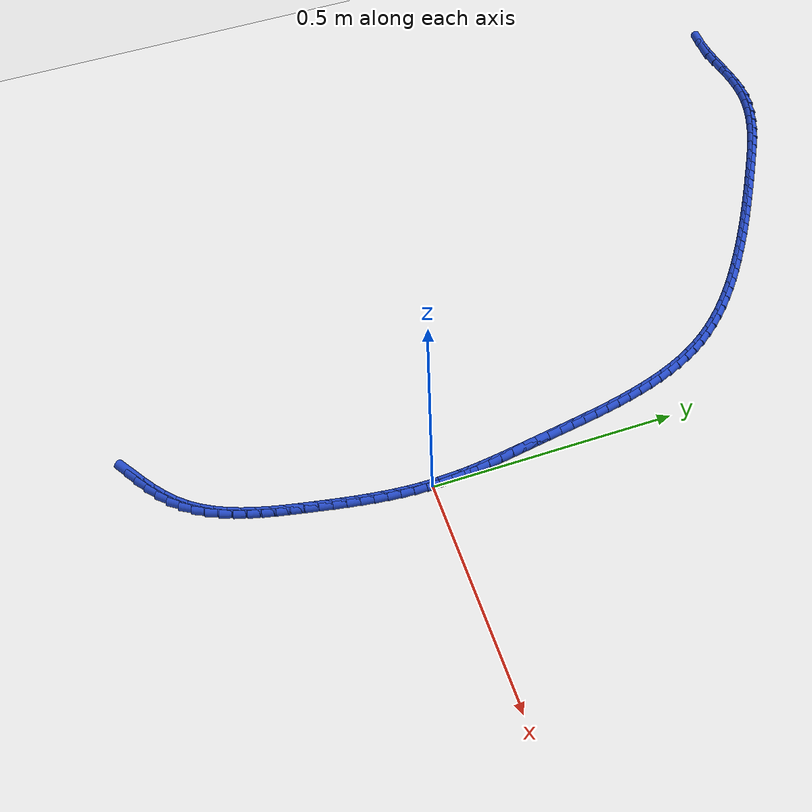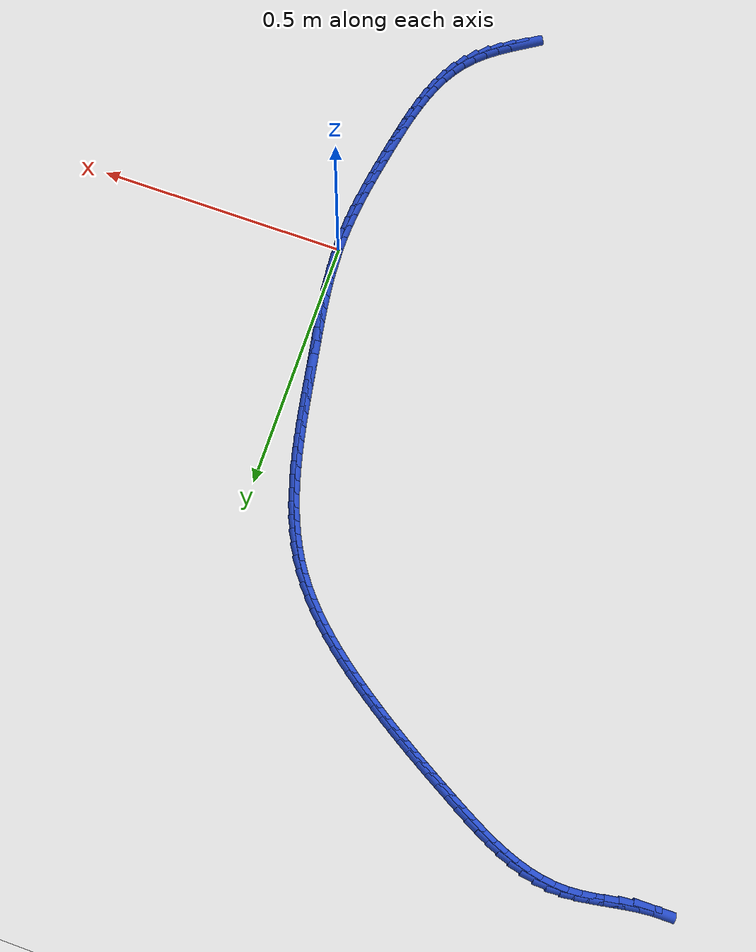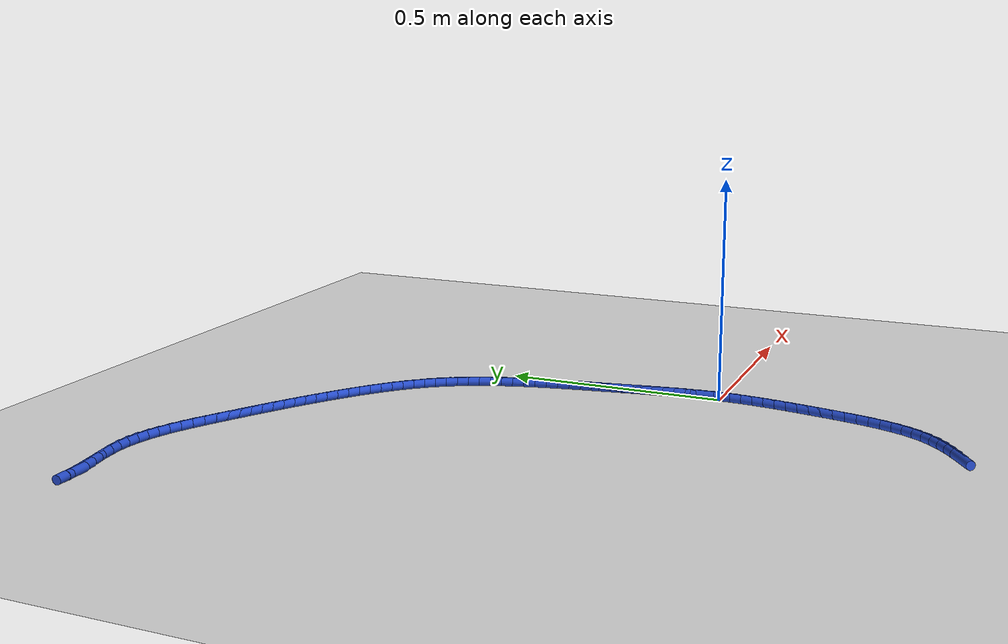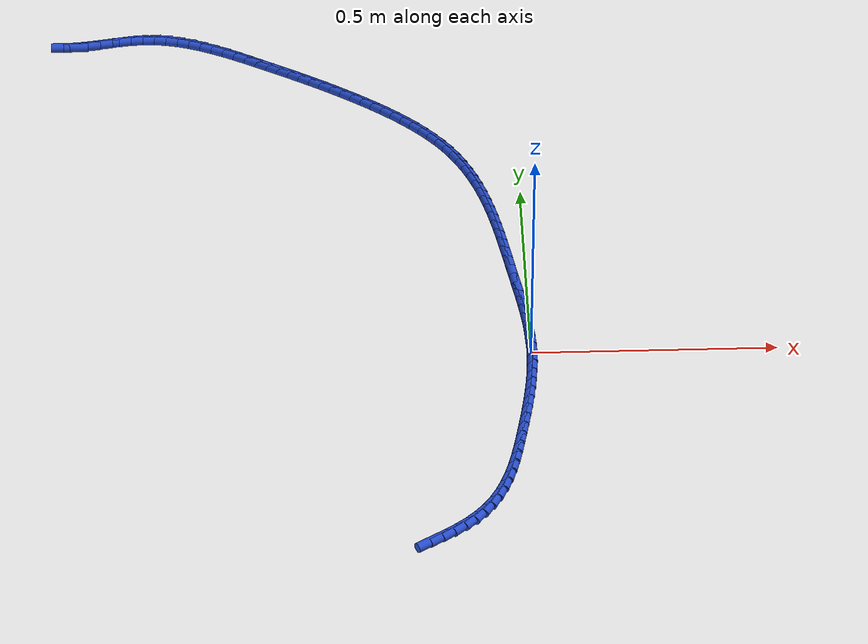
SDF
<sdf version="1.6">
 <world name="default">
  <model name="ground_plane">
   <static>1</static>
   <link name="link">
    <collision name="collision">
     <geometry><plane><normal>0 0 1</normal><size>100 100</size></plane></geometry>
     <surface><friction><ode><mu>100</mu><mu2>50</mu2></ode></friction></surface>
    </collision>
    <visual name="visual">
     <cast_shadows>0</cast_shadows>
     <geometry><plane><normal>0 0 1</normal><size>100 100</size></plane></geometry>
     <material>
      <script><uri>file://media/materials/scripts/gazebo.material</uri><name>Gazebo/WhiteGlow</name></script>
     </material>
    </visual>
   </link>
  </model>
  <model name="line">
   <link name="link_0">
    <pose>2.6020852139652106e-18 2.7755575615628914e-17 0.01 0 1.57 -1.5447094421264198</pose>
    <collision name="collision">
     <geometry><cylinder><radius>0.01</radius><length>0.08</length></cylinder></geometry>
    </collision>
    <visual name="visual">
     <material>
      <script><name>Gazebo/Blue</name><uri>file://media/materials/scripts/gazebo.material</uri></script>
     </material>
     <geometry><cylinder><radius>0.01</radius><length>0.08</length></cylinder></geometry>
    </visual>
   </link>
   <link name="link_1">
    <pose>-0.0006769524643260038 0.025944029147597688 0.01 0 1.57 -1.5100900439261125</pose>
    <collision name="collision">
     <geometry><cylinder><radius>0.01</radius><length>0.08</length></cylinder></geometry>
    </collision>
    <visual name="visual">
     <material>
      <script><name>Gazebo/Blue</name><uri>file://media/materials/scripts/gazebo.material</uri></script>
     </material>
     <geometry><cylinder><radius>0.01</radius><length>0.08</length></cylinder></geometry>
    </visual>
   </link>
   <link name="link_2">
    <pose>-0.002255354939390575 0.05191272607095028 0.01 0 1.57 -1.4803244715710675</pose>
    <collision name="collision">
     <geometry><cylinder><radius>0.01</radius><length>0.08</length></cylinder></geometry>
    </collision>
    <visual name="visual">
     <material>
      <script><name>Gazebo/Blue</name><uri>file://media/materials/scripts/gazebo.material</uri></script>
     </material>
     <geometry><cylinder><radius>0.01</radius><length>0.08</length></cylinder></geometry>
    </visual>
   </link>
   <link name="link_3">
    <pose>-0.004614749920993577 0.07792030733704819 0.01 0 1.57 -1.4554301864849306</pose>
    <collision name="collision">
     <geometry><cylinder><radius>0.01</radius><length>0.08</length></cylinder></geometry>
    </collision>
    <visual name="visual">
     <material>
      <script><name>Gazebo/Blue</name><uri>file://media/materials/scripts/gazebo.material</uri></script>
     </material>
     <geometry><cylinder><radius>0.01</radius><length>0.08</length></cylinder></geometry>
    </visual>
   </link>
   <link name="link_4">
    <pose>-0.007634679904934878 0.10398098951288173 0.01 0 1.57 -1.435377638917283</pose>
    <collision name="collision">
     <geometry><cylinder><radius>0.01</radius><length>0.08</length></cylinder></geometry>
    </collision>
    <visual name="visual">
     <material>
      <script><name>Gazebo/Blue</name><uri>file://media/materials/scripts/gazebo.material</uri></script>
     </material>
     <geometry><cylinder><radius>0.01</radius><length>0.08</length></cylinder></geometry>
    </visual>
   </link>
   <link name="link_5">
    <pose>-0.011194687387014351 0.1301089891654413 0.01 0 1.57 -1.420108404458254</pose>
    <collision name="collision">
     <geometry><cylinder><radius>0.01</radius><length>0.08</length></cylinder></geometry>
    </collision>
    <visual name="visual">
     <material>
      <script><name>Gazebo/Blue</name><uri>file://media/materials/scripts/gazebo.material</uri></script>
     </material>
     <geometry><cylinder><radius>0.01</radius><length>0.08</length></cylinder></geometry>
    </visual>
   </link>
   <link name="link_6">
    <pose>-0.015174314863031862 0.15631852286171719 0.01 0 1.57 -1.409549563930252</pose>
    <collision name="collision">
     <geometry><cylinder><radius>0.01</radius><length>0.08</length></cylinder></geometry>
    </collision>
    <visual name="visual">
     <material>
      <script><name>Gazebo/Blue</name><uri>file://media/materials/scripts/gazebo.material</uri></script>
     </material>
     <geometry><cylinder><radius>0.01</radius><length>0.08</length></cylinder></geometry>
    </visual>
   </link>
   <link name="link_7">
    <pose>-0.019453104828787288 0.18262380716869986 0.01 0 1.57 -1.4036242079029975</pose>
    <collision name="collision">
     <geometry><cylinder><radius>0.01</radius><length>0.08</length></cylinder></geometry>
    </collision>
    <visual name="visual">
     <material>
      <script><name>Gazebo/Blue</name><uri>file://media/materials/scripts/gazebo.material</uri></script>
     </material>
     <geometry><cylinder><radius>0.01</radius><length>0.08</length></cylinder></geometry>
    </visual>
   </link>
   <link name="link_8">
    <pose>-0.023910599780080498 0.2090390586533796 0.01 0 1.57 -1.4022582798342151</pose>
    <collision name="collision">
     <geometry><cylinder><radius>0.01</radius><length>0.08</length></cylinder></geometry>
    </collision>
    <visual name="visual">
     <material>
      <script><name>Gazebo/Blue</name><uri>file://media/materials/scripts/gazebo.material</uri></script>
     </material>
     <geometry><cylinder><radius>0.01</radius><length>0.08</length></cylinder></geometry>
    </visual>
   </link>
   <link name="link_9">
    <pose>-0.028426342212711356 0.23557849388274674 0.01 0 1.57 -1.404509090377896</pose>
    <collision name="collision">
     <geometry><cylinder><radius>0.01</radius><length>0.08</length></cylinder></geometry>
    </collision>
    <visual name="visual">
     <material>
      <script><name>Gazebo/Blue</name><uri>file://media/materials/scripts/gazebo.material</uri></script>
     </material>
     <geometry><cylinder><radius>0.01</radius><length>0.08</length></cylinder></geometry>
    </visual>
   </link>
   <link name="link_10">
    <pose>-0.032902531148956984 0.2622483398547428 0.01 0 1.57 -1.4049930176146386</pose>
    <collision name="collision">
     <geometry><cylinder><radius>0.01</radius><length>0.08</length></cylinder></geometry>
    </collision>
    <visual name="visual">
     <material>
      <script><name>Gazebo/Blue</name><uri>file://media/materials/scripts/gazebo.material</uri></script>
     </material>
     <geometry><cylinder><radius>0.01</radius><length>0.08</length></cylinder></geometry>
    </visual>
   </link>
   <link name="link_11">
    <pose>-0.0373801278206156 0.2890058906359765 0.01 0 1.57 -1.4017098681388058</pose>
    <collision name="collision">
     <geometry><cylinder><radius>0.01</radius><length>0.08</length></cylinder></geometry>
    </collision>
    <visual name="visual">
     <material>
      <script><name>Gazebo/Blue</name><uri>file://media/materials/scripts/gazebo.material</uri></script>
     </material>
     <geometry><cylinder><radius>0.01</radius><length>0.08</length></cylinder></geometry>
    </visual>
   </link>
   <link name="link_12">
    <pose>-0.04195260432512614 0.31578992292733105 0.01 0 1.57 -1.3946572514319164</pose>
    <collision name="collision">
     <geometry><cylinder><radius>0.01</radius><length>0.08</length></cylinder></geometry>
    </collision>
    <visual name="visual">
     <material>
      <script><name>Gazebo/Blue</name><uri>file://media/materials/scripts/gazebo.material</uri></script>
     </material>
     <geometry><cylinder><radius>0.01</radius><length>0.08</length></cylinder></geometry>
    </visual>
   </link>
   <link name="link_13">
    <pose>-0.04671353150580254 0.3425391786080681 0.01 0 1.57 -1.383800849583464</pose>
    <collision name="collision">
     <geometry><cylinder><radius>0.01</radius><length>0.08</length></cylinder></geometry>
    </collision>
    <visual name="visual">
     <material>
      <script><name>Gazebo/Blue</name><uri>file://media/materials/scripts/gazebo.material</uri></script>
     </material>
     <geometry><cylinder><radius>0.01</radius><length>0.08</length></cylinder></geometry>
    </visual>
   </link>
   <link name="link_14">
    <pose>-0.051756480205958785 0.3691923995574494 0.01 0 1.57 -1.369073128355578</pose>
    <collision name="collision">
     <geometry><cylinder><radius>0.01</radius><length>0.08</length></cylinder></geometry>
    </collision>
    <visual name="visual">
     <material>
      <script><name>Gazebo/Blue</name><uri>file://media/materials/scripts/gazebo.material</uri></script>
     </material>
     <geometry><cylinder><radius>0.01</radius><length>0.08</length></cylinder></geometry>
    </visual>
   </link>
   <link name="link_15">
    <pose>-0.05717502126890887 0.3956883276547368 0.01 0 1.57 -1.350376945615379</pose>
    <collision name="collision">
     <geometry><cylinder><radius>0.01</radius><length>0.08</length></cylinder></geometry>
    </collision>
    <visual name="visual">
     <material>
      <script><name>Gazebo/Blue</name><uri>file://media/materials/scripts/gazebo.material</uri></script>
     </material>
     <geometry><cylinder><radius>0.01</radius><length>0.08</length></cylinder></geometry>
    </visual>
   </link>
   <link name="link_16">
    <pose>-0.0630627255379667 0.4219657047791917 0.01 0 1.57 -1.3275906923907972</pose>
    <collision name="collision">
     <geometry><cylinder><radius>0.01</radius><length>0.08</length></cylinder></geometry>
    </collision>
    <visual name="visual">
     <material>
      <script><name>Gazebo/Blue</name><uri>file://media/materials/scripts/gazebo.material</uri></script>
     </material>
     <geometry><cylinder><radius>0.01</radius><length>0.08</length></cylinder></geometry>
    </visual>
   </link>
   <link name="link_17">
    <pose>-0.0695131638564463 0.4479632728100762 0.01 0 1.57 -1.3005755761587714</pose>
    <collision name="collision">
     <geometry><cylinder><radius>0.01</radius><length>0.08</length></cylinder></geometry>
    </collision>
    <visual name="visual">
     <material>
      <script><name>Gazebo/Blue</name><uri>file://media/materials/scripts/gazebo.material</uri></script>
     </material>
     <geometry><cylinder><radius>0.01</radius><length>0.08</length></cylinder></geometry>
    </visual>
   </link>
   <link name="link_18">
    <pose>-0.07661990706766159 0.47361977362665153 0.01 0 1.57 -1.2691857881140747</pose>
    <collision name="collision">
     <geometry><cylinder><radius>0.01</radius><length>0.08</length></cylinder></geometry>
    </collision>
    <visual name="visual">
     <material>
      <script><name>Gazebo/Blue</name><uri>file://media/materials/scripts/gazebo.material</uri></script>
     </material>
     <geometry><cylinder><radius>0.01</radius><length>0.08</length></cylinder></geometry>
    </visual>
   </link>
   <link name="link_19">
    <pose>-0.0844765260149266 0.49887394910818 0.01 0 1.57 -1.2332823554020298</pose>
    <collision name="collision">
     <geometry><cylinder><radius>0.01</radius><length>0.08</length></cylinder></geometry>
    </collision>
    <visual name="visual">
     <material>
      <script><name>Gazebo/Blue</name><uri>file://media/materials/scripts/gazebo.material</uri></script>
     </material>
     <geometry><cylinder><radius>0.01</radius><length>0.08</length></cylinder></geometry>
    </visual>
   </link>
   <link name="link_20">
    <pose>-0.09317659154155523 0.5236645411339228 0.01 0 1.57 -1.1927513883036622</pose>
    <collision name="collision">
     <geometry><cylinder><radius>0.01</radius><length>0.08</length></cylinder></geometry>
    </collision>
    <visual name="visual">
     <material>
      <script><name>Gazebo/Blue</name><uri>file://media/materials/scripts/gazebo.material</uri></script>
     </material>
     <geometry><cylinder><radius>0.01</radius><length>0.08</length></cylinder></geometry>
    </visual>
   </link>
   <link name="link_21">
    <pose>-0.1028136744908615 0.547930291583142 0.01 0 1.57 -1.1475270799617239</pose>
    <collision name="collision">
     <geometry><cylinder><radius>0.01</radius><length>0.08</length></cylinder></geometry>
    </collision>
    <visual name="visual">
     <material>
      <script><name>Gazebo/Blue</name><uri>file://media/materials/scripts/gazebo.material</uri></script>
     </material>
     <geometry><cylinder><radius>0.01</radius><length>0.08</length></cylinder></geometry>
    </visual>
   </link>
   <link name="link_22">
    <pose>-0.11348134570615934 0.571609942335099 0.01 0 1.57 -1.0976190742251068</pose>
    <collision name="collision">
     <geometry><cylinder><radius>0.01</radius><length>0.08</length></cylinder></geometry>
    </collision>
    <visual name="visual">
     <material>
      <script><name>Gazebo/Blue</name><uri>file://media/materials/scripts/gazebo.material</uri></script>
     </material>
     <geometry><cylinder><radius>0.01</radius><length>0.08</length></cylinder></geometry>
    </visual>
   </link>
   <link name="link_23">
    <pose>-0.12527317603076274 0.5946422352690558 0.01 0 1.57 -1.0431425920916884</pose>
    <collision name="collision">
     <geometry><cylinder><radius>0.01</radius><length>0.08</length></cylinder></geometry>
    </collision>
    <visual name="visual">
     <material>
      <script><name>Gazebo/Blue</name><uri>file://media/materials/scripts/gazebo.material</uri></script>
     </material>
     <geometry><cylinder><radius>0.01</radius><length>0.08</length></cylinder></geometry>
    </visual>
   </link>
   <link name="link_24">
    <pose>-0.1382827363079857 0.6169659122642741 0.01 0 1.57 -0.984368553700614</pose>
    <collision name="collision">
     <geometry><cylinder><radius>0.01</radius><length>0.08</length></cylinder></geometry>
    </collision>
    <visual name="visual">
     <material>
      <script><name>Gazebo/Blue</name><uri>file://media/materials/scripts/gazebo.material</uri></script>
     </material>
     <geometry><cylinder><radius>0.01</radius><length>0.08</length></cylinder></geometry>
    </visual>
   </link>
   <link name="link_25">
    <pose>-0.15260310255913614 0.6385199297352661 0.01 0 1.57 -0.924508777456821</pose>
    <collision name="collision">
     <geometry><cylinder><radius>0.01</radius><length>0.08</length></cylinder></geometry>
    </collision>
    <visual name="visual">
     <material>
      <script><name>Gazebo/Blue</name><uri>file://media/materials/scripts/gazebo.material</uri></script>
     </material>
     <geometry><cylinder><radius>0.01</radius><length>0.08</length></cylinder></geometry>
    </visual>
   </link>
   <link name="link_26">
    <pose>-0.16825851615281318 0.6592730880794121 0.01 0 1.57 -0.8694539486937449</pose>
    <collision name="collision">
     <geometry><cylinder><radius>0.01</radius><length>0.08</length></cylinder></geometry>
    </collision>
    <visual name="visual">
     <material>
      <script><name>Gazebo/Blue</name><uri>file://media/materials/scripts/gazebo.material</uri></script>
     </material>
     <geometry><cylinder><radius>0.01</radius><length>0.08</length></cylinder></geometry>
    </visual>
   </link>
   <link name="link_27">
    <pose>-0.1851344179754364 0.6792543660933328 0.01 0 1.57 -0.8197957248820276</pose>
    <collision name="collision">
     <geometry><cylinder><radius>0.01</radius><length>0.08</length></cylinder></geometry>
    </collision>
    <visual name="visual">
     <material>
      <script><name>Gazebo/Blue</name><uri>file://media/materials/scripts/gazebo.material</uri></script>
     </material>
     <geometry><cylinder><radius>0.01</radius><length>0.08</length></cylinder></geometry>
    </visual>
   </link>
   <link name="link_28">
    <pose>-0.20309956402799006 0.6984999764800532 0.01 0 1.57 -0.7753371779194762</pose>
    <collision name="collision">
     <geometry><cylinder><radius>0.01</radius><length>0.08</length></cylinder></geometry>
    </collision>
    <visual name="visual">
     <material>
      <script><name>Gazebo/Blue</name><uri>file://media/materials/scripts/gazebo.material</uri></script>
     </material>
     <geometry><cylinder><radius>0.01</radius><length>0.08</length></cylinder></geometry>
    </visual>
   </link>
   <link name="link_29">
    <pose>-0.22202271031145848 0.7170461319425983 0.01 0 1.57 -0.7358281324362274</pose>
    <collision name="collision">
     <geometry><cylinder><radius>0.01</radius><length>0.08</length></cylinder></geometry>
    </collision>
    <visual name="visual">
     <material>
      <script><name>Gazebo/Blue</name><uri>file://media/materials/scripts/gazebo.material</uri></script>
     </material>
     <geometry><cylinder><radius>0.01</radius><length>0.08</length></cylinder></geometry>
    </visual>
   </link>
   <link name="link_30">
    <pose>-0.24177261282682586 0.7349290451839929 0.01 0 1.57 -0.7009991020640058</pose>
    <collision name="collision">
     <geometry><cylinder><radius>0.01</radius><length>0.08</length></cylinder></geometry>
    </collision>
    <visual name="visual">
     <material>
      <script><name>Gazebo/Blue</name><uri>file://media/materials/scripts/gazebo.material</uri></script>
     </material>
     <geometry><cylinder><radius>0.01</radius><length>0.08</length></cylinder></geometry>
    </visual>
   </link>
   <link name="link_31">
    <pose>-0.2622180275750764 0.7521849289072624 0.01 0 1.57 -0.6705862700640924</pose>
    <collision name="collision">
     <geometry><cylinder><radius>0.01</radius><length>0.08</length></cylinder></geometry>
    </collision>
    <visual name="visual">
     <material>
      <script><name>Gazebo/Blue</name><uri>file://media/materials/scripts/gazebo.material</uri></script>
     </material>
     <geometry><cylinder><radius>0.01</radius><length>0.08</length></cylinder></geometry>
    </visual>
   </link>
   <link name="link_32">
    <pose>-0.2832277105571945 0.7688499958154315 0.01 0 1.57 -0.64434918952249</pose>
    <collision name="collision">
     <geometry><cylinder><radius>0.01</radius><length>0.08</length></cylinder></geometry>
    </collision>
    <visual name="visual">
     <material>
      <script><name>Gazebo/Blue</name><uri>file://media/materials/scripts/gazebo.material</uri></script>
     </material>
     <geometry><cylinder><radius>0.01</radius><length>0.08</length></cylinder></geometry>
    </visual>
   </link>
   <link name="link_33">
    <pose>-0.3046704177741643 0.7849604586115251 0.01 0 1.57 -0.6220831686011091</pose>
    <collision name="collision">
     <geometry><cylinder><radius>0.01</radius><length>0.08</length></cylinder></geometry>
    </collision>
    <visual name="visual">
     <material>
      <script><name>Gazebo/Blue</name><uri>file://media/materials/scripts/gazebo.material</uri></script>
     </material>
     <geometry><cylinder><radius>0.01</radius><length>0.08</length></cylinder></geometry>
    </visual>
   </link>
   <link name="link_34">
    <pose>-0.3264149052269702 0.8005525299985685 0.01 0 1.57 -0.6036259810245913</pose>
    <collision name="collision">
     <geometry><cylinder><radius>0.01</radius><length>0.08</length></cylinder></geometry>
    </collision>
    <visual name="visual">
     <material>
      <script><name>Gazebo/Blue</name><uri>file://media/materials/scripts/gazebo.material</uri></script>
     </material>
     <geometry><cylinder><radius>0.01</radius><length>0.08</length></cylinder></geometry>
    </visual>
   </link>
   <link name="link_35">
    <pose>-0.34833005311608584 0.8156624364001636 0.01 0 1.57 -0.5881525538069565</pose>
    <collision name="collision">
     <geometry><cylinder><radius>0.01</radius><length>0.08</length></cylinder></geometry>
    </collision>
    <visual name="visual">
     <material>
      <script><name>Gazebo/Blue</name><uri>file://media/materials/scripts/gazebo.material</uri></script>
     </material>
     <geometry><cylinder><radius>0.01</radius><length>0.08</length></cylinder></geometry>
    </visual>
   </link>
   <link name="link_36">
    <pose>-0.3703256341965933 0.8303309217257456 0.01 0 1.57 -0.573928437207423</pose>
    <collision name="collision">
     <geometry><cylinder><radius>0.01</radius><length>0.08</length></cylinder></geometry>
    </collision>
    <visual name="visual">
     <material>
      <script><name>Gazebo/Blue</name><uri>file://media/materials/scripts/gazebo.material</uri></script>
     </material>
     <geometry><cylinder><radius>0.01</radius><length>0.08</length></cylinder></geometry>
    </visual>
   </link>
   <link name="link_37">
    <pose>-0.39241112752740775 0.8446097446481814 0.01 0 1.57 -0.5607891031118247</pose>
    <collision name="collision">
     <geometry><cylinder><radius>0.01</radius><length>0.08</length></cylinder></geometry>
    </collision>
    <visual name="visual">
     <material>
      <script><name>Gazebo/Blue</name><uri>file://media/materials/scripts/gazebo.material</uri></script>
     </material>
     <geometry><cylinder><radius>0.01</radius><length>0.08</length></cylinder></geometry>
    </visual>
   </link>
   <link name="link_38">
    <pose>-0.4146109215787564 0.858552310914116 0.01 0 1.57 -0.548823795246978</pose>
    <collision name="collision">
     <geometry><cylinder><radius>0.01</radius><length>0.08</length></cylinder></geometry>
    </collision>
    <visual name="visual">
     <material>
      <script><name>Gazebo/Blue</name><uri>file://media/materials/scripts/gazebo.material</uri></script>
     </material>
     <geometry><cylinder><radius>0.01</radius><length>0.08</length></cylinder></geometry>
    </visual>
   </link>
   <link name="link_39">
    <pose>-0.43694940482086586 0.8722120262701932 0.01 0 1.57 -0.5381071029037967</pose>
    <collision name="collision">
     <geometry><cylinder><radius>0.01</radius><length>0.08</length></cylinder></geometry>
    </collision>
    <visual name="visual">
     <material>
      <script><name>Gazebo/Blue</name><uri>file://media/materials/scripts/gazebo.material</uri></script>
     </material>
     <geometry><cylinder><radius>0.01</radius><length>0.08</length></cylinder></geometry>
    </visual>
   </link>
   <link name="link_40">
    <pose>-0.45945096572396293 0.8856422964630577 0.01 0 1.57 -0.528697873519467</pose>
    <collision name="collision">
     <geometry><cylinder><radius>0.01</radius><length>0.08</length></cylinder></geometry>
    </collision>
    <visual name="visual">
     <material>
      <script><name>Gazebo/Blue</name><uri>file://media/materials/scripts/gazebo.material</uri></script>
     </material>
     <geometry><cylinder><radius>0.01</radius><length>0.08</length></cylinder></geometry>
    </visual>
   </link>
   <link name="link_41">
    <pose>-0.48213999275827485 0.8988965272393539 0.01 0 1.57 -0.5206386159855023</pose>
    <collision name="collision">
     <geometry><cylinder><radius>0.01</radius><length>0.08</length></cylinder></geometry>
    </collision>
    <visual name="visual">
     <material>
      <script><name>Gazebo/Blue</name><uri>file://media/materials/scripts/gazebo.material</uri></script>
     </material>
     <geometry><cylinder><radius>0.01</radius><length>0.08</length></cylinder></geometry>
    </visual>
   </link>
   <link name="link_42">
    <pose>-0.5050408743940286 0.912028124345726 0.01 0 1.57 -0.5139553764786593</pose>
    <collision name="collision">
     <geometry><cylinder><radius>0.01</radius><length>0.08</length></cylinder></geometry>
    </collision>
    <visual name="visual">
     <material>
      <script><name>Gazebo/Blue</name><uri>file://media/materials/scripts/gazebo.material</uri></script>
     </material>
     <geometry><cylinder><radius>0.01</radius><length>0.08</length></cylinder></geometry>
    </visual>
   </link>
   <link name="link_43">
    <pose>-0.528177999101451 0.9250904935288189 0.01 0 1.57 -0.5086580471919975</pose>
    <collision name="collision">
     <geometry><cylinder><radius>0.01</radius><length>0.08</length></cylinder></geometry>
    </collision>
    <visual name="visual">
     <material>
      <script><name>Gazebo/Blue</name><uri>file://media/materials/scripts/gazebo.material</uri></script>
     </material>
     <geometry><cylinder><radius>0.01</radius><length>0.08</length></cylinder></geometry>
    </visual>
   </link>
   <link name="link_44">
    <pose>-0.5515757553507691 0.9381370405352767 0.01 0 1.57 -0.5034489246326013</pose>
    <collision name="collision">
     <geometry><cylinder><radius>0.01</radius><length>0.08</length></cylinder></geometry>
    </collision>
    <visual name="visual">
     <material>
      <script><name>Gazebo/Blue</name><uri>file://media/materials/scripts/gazebo.material</uri></script>
     </material>
     <geometry><cylinder><radius>0.01</radius><length>0.08</length></cylinder></geometry>
    </visual>
   </link>
   <link name="link_45">
    <pose>-0.5752548627448204 0.9511792372746727 0.01 0 1.57 -0.4913635665854086</pose>
    <collision name="collision">
     <geometry><cylinder><radius>0.01</radius><length>0.08</length></cylinder></geometry>
    </collision>
    <visual name="visual">
     <material>
      <script><name>Gazebo/Blue</name><uri>file://media/materials/scripts/gazebo.material</uri></script>
     </material>
     <geometry><cylinder><radius>0.01</radius><length>0.08</length></cylinder></geometry>
    </visual>
   </link>
   <link name="link_46">
    <pose>-0.5992162135918869 0.9640019367981443 0.01 0 1.57 -0.46999554203275534</pose>
    <collision name="collision">
     <geometry><cylinder><radius>0.01</radius><length>0.08</length></cylinder></geometry>
    </collision>
    <visual name="visual">
     <material>
      <script><name>Gazebo/Blue</name><uri>file://media/materials/scripts/gazebo.material</uri></script>
     </material>
     <geometry><cylinder><radius>0.01</radius><length>0.08</length></cylinder></geometry>
    </visual>
   </link>
   <link name="link_47">
    <pose>-0.6234540328256201 0.9763137864585127 0.01 0 1.57 -0.43904641459854177</pose>
    <collision name="collision">
     <geometry><cylinder><radius>0.01</radius><length>0.08</length></cylinder></geometry>
    </collision>
    <visual name="visual">
     <material>
      <script><name>Gazebo/Blue</name><uri>file://media/materials/scripts/gazebo.material</uri></script>
     </material>
     <geometry><cylinder><radius>0.01</radius><length>0.08</length></cylinder></geometry>
    </visual>
   </link>
   <link name="link_48">
    <pose>-0.6479625403933298 0.9878233766165061 0.01 0 1.57 -0.39800833734970154</pose>
    <collision name="collision">
     <geometry><cylinder><radius>0.01</radius><length>0.08</length></cylinder></geometry>
    </collision>
    <visual name="visual">
     <material>
      <script><name>Gazebo/Blue</name><uri>file://media/materials/scripts/gazebo.material</uri></script>
     </material>
     <geometry><cylinder><radius>0.01</radius><length>0.08</length></cylinder></geometry>
    </visual>
   </link>
   <link name="link_49">
    <pose>-0.6727359562423264 0.9982392976328537 0.01 0 1.57 -0.34623181460450403</pose>
    <collision name="collision">
     <geometry><cylinder><radius>0.01</radius><length>0.08</length></cylinder></geometry>
    </collision>
    <visual name="visual">
     <material>
      <script><name>Gazebo/Blue</name><uri>file://media/materials/scripts/gazebo.material</uri></script>
     </material>
     <geometry><cylinder><radius>0.01</radius><length>0.08</length></cylinder></geometry>
    </visual>
   </link>
   <link name="link_50">
    <pose>-0.6977685003199204 1.007270139868284 0.01 0 1.57 -0.28303955580473206</pose>
    <collision name="collision">
     <geometry><cylinder><radius>0.01</radius><length>0.08</length></cylinder></geometry>
    </collision>
    <visual name="visual">
     <material>
      <script><name>Gazebo/Blue</name><uri>file://media/materials/scripts/gazebo.material</uri></script>
     </material>
     <geometry><cylinder><radius>0.01</radius><length>0.08</length></cylinder></geometry>
    </visual>
   </link>
   <link name="link_51">
    <pose>-0.7230543925734221 1.014624493683526 0.01 0 1.57 -0.20790835478851716</pose>
    <collision name="collision">
     <geometry><cylinder><radius>0.01</radius><length>0.08</length></cylinder></geometry>
    </collision>
    <visual name="visual">
     <material>
      <script><name>Gazebo/Blue</name><uri>file://media/materials/scripts/gazebo.material</uri></script>
     </material>
     <geometry><cylinder><radius>0.01</radius><length>0.08</length></cylinder></geometry>
    </visual>
   </link>
   <link name="link_52">
    <pose>-0.7485878529501413 1.0200109494393088 0.01 0 1.57 -0.1207336129618366</pose>
    <collision name="collision">
     <geometry><cylinder><radius>0.01</radius><length>0.08</length></cylinder></geometry>
    </collision>
    <visual name="visual">
     <material>
      <script><name>Gazebo/Blue</name><uri>file://media/materials/scripts/gazebo.material</uri></script>
     </material>
     <geometry><cylinder><radius>0.01</radius><length>0.08</length></cylinder></geometry>
    </visual>
   </link>
   <link name="link_53">
    <pose>-0.7743631013973884 1.0231380974963606 0.01 0 1.57 -0.022465557204322025</pose>
    <collision name="collision">
     <geometry><cylinder><radius>0.01</radius><length>0.08</length></cylinder></geometry>
    </collision>
    <visual name="visual">
     <material>
      <script><name>Gazebo/Blue</name><uri>file://media/materials/scripts/gazebo.material</uri></script>
     </material>
     <geometry><cylinder><radius>0.01</radius><length>0.08</length></cylinder></geometry>
    </visual>
   </link>
   <link name="link_54">
    <pose>-0.8003738665643457 1.0237225421557743 0.01 0 1.57 0.06960390742089367</pose>
    <collision name="collision">
     <geometry><cylinder><radius>0.01</radius><length>0.08</length></cylinder></geometry>
    </collision>
    <visual name="visual">
     <material>
      <script><name>Gazebo/Blue</name><uri>file://media/materials/scripts/gazebo.material</uri></script>
     </material>
     <geometry><cylinder><radius>0.01</radius><length>0.08</length></cylinder></geometry>
    </visual>
   </link>
   <link name="link_55">
    <pose>-0.8265884928673899 1.021894949397888 0.01 0 1.57 0.13216317321543872</pose>
    <collision name="collision">
     <geometry><cylinder><radius>0.01</radius><length>0.08</length></cylinder></geometry>
    </collision>
    <visual name="visual">
     <material>
      <script><name>Gazebo/Blue</name><uri>file://media/materials/scripts/gazebo.material</uri></script>
     </material>
     <geometry><cylinder><radius>0.01</radius><length>0.08</length></cylinder></geometry>
    </visual>
   </link>
   <link name="link_56">
    <pose>-0.8529381681911589 1.018392073874078 0.01 0 1.57 0.16481963725811485</pose>
    <collision name="collision">
     <geometry><cylinder><radius>0.01</radius><length>0.08</length></cylinder></geometry>
    </collision>
    <visual name="visual">
     <material>
      <script><name>Gazebo/Blue</name><uri>file://media/materials/scripts/gazebo.material</uri></script>
     </material>
     <geometry><cylinder><radius>0.01</radius><length>0.08</length></cylinder></geometry>
    </visual>
   </link>
   <link name="link_57">
    <pose>-0.8793511269886184 1.0139988459236557 0.01 0 1.57 0.16875413462926475</pose>
    <collision name="collision">
     <geometry><cylinder><radius>0.01</radius><length>0.08</length></cylinder></geometry>
    </collision>
    <visual name="visual">
     <material>
      <script><name>Gazebo/Blue</name><uri>file://media/materials/scripts/gazebo.material</uri></script>
     </material>
     <geometry><cylinder><radius>0.01</radius><length>0.08</length></cylinder></geometry>
    </visual>
   </link>
   <link name="link_58">
    <pose>-0.9057556037127329 1.009500195885932 0.01 0 1.57 0.14407561529840715</pose>
    <collision name="collision">
     <geometry><cylinder><radius>0.01</radius><length>0.08</length></cylinder></geometry>
    </collision>
    <visual name="visual">
     <material>
      <script><name>Gazebo/Blue</name><uri>file://media/materials/scripts/gazebo.material</uri></script>
     </material>
     <geometry><cylinder><radius>0.01</radius><length>0.08</length></cylinder></geometry>
    </visual>
   </link>
   <link name="link_59">
    <pose>-0.9320798328164681 1.0056810541002177 0.01 0 1.57 0.08972799545765953</pose>
    <collision name="collision">
     <geometry><cylinder><radius>0.01</radius><length>0.08</length></cylinder></geometry>
    </collision>
    <visual name="visual">
     <material>
      <script><name>Gazebo/Blue</name><uri>file://media/materials/scripts/gazebo.material</uri></script>
     </material>
     <geometry><cylinder><radius>0.01</radius><length>0.08</length></cylinder></geometry>
    </visual>
   </link>
   <link name="link_60">
    <pose>-0.9582520487527886 1.0033263509058234 0.01 0 1.57 0.0040593460132363444</pose>
    <collision name="collision">
     <geometry><cylinder><radius>0.01</radius><length>0.08</length></cylinder></geometry>
    </collision>
    <visual name="visual">
     <material>
      <script><name>Gazebo/Blue</name><uri>file://media/materials/scripts/gazebo.material</uri></script>
     </material>
     <geometry><cylinder><radius>0.01</radius><length>0.08</length></cylinder></geometry>
    </visual>
   </link>
   <link name="link_237">
    <pose>-0.2139666233055724 -0.5432008131453835 0.01 0 1.57 0.5609289025509656</pose>
    <collision name="collision">
     <geometry><cylinder><radius>0.01</radius><length>0.08</length></cylinder></geometry>
    </collision>
    <visual name="visual">
     <material>
      <script><name>Gazebo/Blue</name><uri>file://media/materials/scripts/gazebo.material</uri></script>
     </material>
     <geometry><cylinder><radius>0.01</radius><length>0.08</length></cylinder></geometry>
    </visual>
   </link>
   <link name="link_238">
    <pose>-0.19039229705064978 -0.5283903767718892 0.01 0 1.57 0.6035945423862747</pose>
    <collision name="collision">
     <geometry><cylinder><radius>0.01</radius><length>0.08</length></cylinder></geometry>
    </collision>
    <visual name="visual">
     <material>
      <script><name>Gazebo/Blue</name><uri>file://media/materials/scripts/gazebo.material</uri></script>
     </material>
     <geometry><cylinder><radius>0.01</radius><length>0.08</length></cylinder></geometry>
    </visual>
   </link>
   <link name="link_239">
    <pose>-0.1678365659483032 -0.5128398516302615 0.01 0 1.57 0.6635337830831978</pose>
    <collision name="collision">
     <geometry><cylinder><radius>0.01</radius><length>0.08</length></cylinder></geometry>
    </collision>
    <visual name="visual">
     <material>
      <script><name>Gazebo/Blue</name><uri>file://media/materials/scripts/gazebo.material</uri></script>
     </material>
     <geometry><cylinder><radius>0.01</radius><length>0.08</length></cylinder></geometry>
    </visual>
   </link>
   <link name="link_240">
    <pose>-0.14666274374997207 -0.49628652106385185 0.01 0 1.57 0.7422074023428638</pose>
    <collision name="collision">
     <geometry><cylinder><radius>0.01</radius><length>0.08</length></cylinder></geometry>
    </collision>
    <visual name="visual">
     <material>
      <script><name>Gazebo/Blue</name><uri>file://media/materials/scripts/gazebo.material</uri></script>
     </material>
     <geometry><cylinder><radius>0.01</radius><length>0.08</length></cylinder></geometry>
    </visual>
   </link>
   <link name="link_241">
    <pose>-0.1272341442070956 -0.47846766841601157 0.01 0 1.57 0.8405151779789926</pose>
    <collision name="collision">
     <geometry><cylinder><radius>0.01</radius><length>0.08</length></cylinder></geometry>
    </collision>
    <visual name="visual">
     <material>
      <script><name>Gazebo/Blue</name><uri>file://media/materials/scripts/gazebo.material</uri></script>
     </material>
     <geometry><cylinder><radius>0.01</radius><length>0.08</length></cylinder></geometry>
    </visual>
   </link>
   <link name="link_242">
    <pose>-0.10991184984702976 -0.4591223136827268 0.01 0 1.57 0.9481664298765188</pose>
    <collision name="collision">
     <geometry><cylinder><radius>0.01</radius><length>0.08</length></cylinder></geometry>
    </collision>
    <visual name="visual">
     <material>
      <script><name>Gazebo/Blue</name><uri>file://media/materials/scripts/gazebo.material</uri></script>
     </material>
     <geometry><cylinder><radius>0.01</radius><length>0.08</length></cylinder></geometry>
    </visual>
   </link>
   <link name="link_243">
    <pose>-0.09485416868703833 -0.4381473045250063 0.01 0 1.57 1.0455565842772343</pose>
    <collision name="collision">
     <geometry><cylinder><radius>0.01</radius><length>0.08</length></cylinder></geometry>
    </collision>
    <visual name="visual">
     <material>
      <script><name>Gazebo/Blue</name><uri>file://media/materials/scripts/gazebo.material</uri></script>
     </material>
     <geometry><cylinder><radius>0.01</radius><length>0.08</length></cylinder></geometry>
    </visual>
   </link>
   <link name="link_244">
    <pose>-0.08185737866220302 -0.415721271370898 0.01 0 1.57 1.1296186104253774</pose>
    <collision name="collision">
     <geometry><cylinder><radius>0.01</radius><length>0.08</length></cylinder></geometry>
    </collision>
    <visual name="visual">
     <material>
      <script><name>Gazebo/Blue</name><uri>file://media/materials/scripts/gazebo.material</uri></script>
     </material>
     <geometry><cylinder><radius>0.01</radius><length>0.08</length></cylinder></geometry>
    </visual>
   </link>
   <link name="link_245">
    <pose>-0.070680280673112 -0.39205201455172434 0.01 0 1.57 1.2002134536632365</pose>
    <collision name="collision">
     <geometry><cylinder><radius>0.01</radius><length>0.08</length></cylinder></geometry>
    </collision>
    <visual name="visual">
     <material>
      <script><name>Gazebo/Blue</name><uri>file://media/materials/scripts/gazebo.material</uri></script>
     </material>
     <geometry><cylinder><radius>0.01</radius><length>0.08</length></cylinder></geometry>
    </visual>
   </link>
   <link name="link_246">
    <pose>-0.06108167562035431 -0.36734733439880984 0.01 0 1.57 1.2578646010402488</pose>
    <collision name="collision">
     <geometry><cylinder><radius>0.01</radius><length>0.08</length></cylinder></geometry>
    </collision>
    <visual name="visual">
     <material>
      <script><name>Gazebo/Blue</name><uri>file://media/materials/scripts/gazebo.material</uri></script>
     </material>
     <geometry><cylinder><radius>0.01</radius><length>0.08</length></cylinder></geometry>
    </visual>
   </link>
   <link name="link_247">
    <pose>-0.052820364404518046 -0.3418150312434769 0.01 0 1.57 1.303376619893382</pose>
    <collision name="collision">
     <geometry><cylinder><radius>0.01</radius><length>0.08</length></cylinder></geometry>
    </collision>
    <visual name="visual">
     <material>
      <script><name>Gazebo/Blue</name><uri>file://media/materials/scripts/gazebo.material</uri></script>
     </material>
     <geometry><cylinder><radius>0.01</radius><length>0.08</length></cylinder></geometry>
    </visual>
   </link>
   <link name="link_248">
    <pose>-0.04565514792619164 -0.3156629054170486 0.01 0 1.57 1.3375689311680734</pose>
    <collision name="collision">
     <geometry><cylinder><radius>0.01</radius><length>0.08</length></cylinder></geometry>
    </collision>
    <visual name="visual">
     <material>
      <script><name>Gazebo/Blue</name><uri>file://media/materials/scripts/gazebo.material</uri></script>
     </material>
     <geometry><cylinder><radius>0.01</radius><length>0.08</length></cylinder></geometry>
    </visual>
   </link>
   <link name="link_249">
    <pose>-0.0393448270859635 -0.28909875725084805 0.01 0 1.57 1.3611126505517048</pose>
    <collision name="collision">
     <geometry><cylinder><radius>0.01</radius><length>0.08</length></cylinder></geometry>
    </collision>
    <visual name="visual">
     <material>
      <script><name>Gazebo/Blue</name><uri>file://media/materials/scripts/gazebo.material</uri></script>
     </material>
     <geometry><cylinder><radius>0.01</radius><length>0.08</length></cylinder></geometry>
    </visual>
   </link>
   <link name="link_250">
    <pose>-0.03364820278442208 -0.26233038707619827 0.01 0 1.57 1.3744430761176054</pose>
    <collision name="collision">
     <geometry><cylinder><radius>0.01</radius><length>0.08</length></cylinder></geometry>
    </collision>
    <visual name="visual">
     <material>
      <script><name>Gazebo/Blue</name><uri>file://media/materials/scripts/gazebo.material</uri></script>
     </material>
     <geometry><cylinder><radius>0.01</radius><length>0.08</length></cylinder></geometry>
    </visual>
   </link>
   <link name="link_251">
    <pose>-0.028324230448379936 -0.2355654896276944 0.01 0 1.57 1.3810651386875836</pose>
    <collision name="collision">
     <geometry><cylinder><radius>0.01</radius><length>0.08</length></cylinder></geometry>
    </collision>
    <visual name="visual">
     <material>
      <script><name>Gazebo/Blue</name><uri>file://media/materials/scripts/gazebo.material</uri></script>
     </material>
     <geometry><cylinder><radius>0.01</radius><length>0.08</length></cylinder></geometry>
    </visual>
   </link>
   <link name="link_252">
    <pose>-0.0232140391224172 -0.20895560564264845 0.01 0 1.57 1.389891636676806</pose>
    <collision name="collision">
     <geometry><cylinder><radius>0.01</radius><length>0.08</length></cylinder></geometry>
    </collision>
    <visual name="visual">
     <material>
      <script><name>Gazebo/Blue</name><uri>file://media/materials/scripts/gazebo.material</uri></script>
     </material>
     <geometry><cylinder><radius>0.01</radius><length>0.08</length></cylinder></geometry>
    </visual>
   </link>
   <link name="link_253">
    <pose>-0.018375905152471363 -0.18250388651759325 0.01 0 1.57 1.4024483478712224</pose>
    <collision name="collision">
     <geometry><cylinder><radius>0.01</radius><length>0.08</length></cylinder></geometry>
    </collision>
    <visual name="visual">
     <material>
      <script><name>Gazebo/Blue</name><uri>file://media/materials/scripts/gazebo.material</uri></script>
     </material>
     <geometry><cylinder><radius>0.01</radius><length>0.08</length></cylinder></geometry>
    </visual>
   </link>
   <link name="link_254">
    <pose>-0.013903559808407533 -0.1561892552439334 0.01 0 1.57 1.4188082287427868</pose>
    <collision name="collision">
     <geometry><cylinder><radius>0.01</radius><length>0.08</length></cylinder></geometry>
    </collision>
    <visual name="visual">
     <material>
      <script><name>Gazebo/Blue</name><uri>file://media/materials/scripts/gazebo.material</uri></script>
     </material>
     <geometry><cylinder><radius>0.01</radius><length>0.08</length></cylinder></geometry>
    </visual>
   </link>
   <link name="link_255">
    <pose>-0.009890734360090943 -0.12999063481307488 0.01 0 1.57 1.439032194769067</pose>
    <collision name="collision">
     <geometry><cylinder><radius>0.01</radius><length>0.08</length></cylinder></geometry>
    </collision>
    <visual name="visual">
     <material>
      <script><name>Gazebo/Blue</name><uri>file://media/materials/scripts/gazebo.material</uri></script>
     </material>
     <geometry><cylinder><radius>0.01</radius><length>0.08</length></cylinder></geometry>
    </visual>
   </link>
   <link name="link_256">
    <pose>-0.0064311600773868305 -0.10388694821642329 0.01 0 1.57 1.4631612827836906</pose>
    <collision name="collision">
     <geometry><cylinder><radius>0.01</radius><length>0.08</length></cylinder></geometry>
    </collision>
    <visual name="visual">
     <material>
      <script><name>Gazebo/Blue</name><uri>file://media/materials/scripts/gazebo.material</uri></script>
     </material>
     <geometry><cylinder><radius>0.01</radius><length>0.08</length></cylinder></geometry>
    </visual>
   </link>
   <link name="link_257">
    <pose>-0.003618568230160441 -0.07785711844538429 0.01 0 1.57 1.4912067841211905</pose>
    <collision name="collision">
     <geometry><cylinder><radius>0.01</radius><length>0.08</length></cylinder></geometry>
    </collision>
    <visual name="visual">
     <material>
      <script><name>Gazebo/Blue</name><uri>file://media/materials/scripts/gazebo.material</uri></script>
     </material>
     <geometry><cylinder><radius>0.01</radius><length>0.08</length></cylinder></geometry>
    </visual>
   </link>
   <link name="link_258">
    <pose>-0.0015466900882770093 -0.05188006849136359 0.01 0 1.57 1.523138603262716</pose>
    <collision name="collision">
     <geometry><cylinder><radius>0.01</radius><length>0.08</length></cylinder></geometry>
    </collision>
    <visual name="visual">
     <material>
      <script><name>Gazebo/Blue</name><uri>file://media/materials/scripts/gazebo.material</uri></script>
     </material>
     <geometry><cylinder><radius>0.01</radius><length>0.08</length></cylinder></geometry>
    </visual>
   </link>
   <link name="link_259">
    <pose>-0.0003092569216017814 -0.025934721345766916 0.01 0 1.57 1.5588724560596647</pose>
    <collision name="collision">
     <geometry><cylinder><radius>0.01</radius><length>0.08</length></cylinder></geometry>
    </collision>
    <visual name="visual">
     <material>
      <script><name>Gazebo/Blue</name><uri>file://media/materials/scripts/gazebo.material</uri></script>
     </material>
     <geometry><cylinder><radius>0.01</radius><length>0.08</length></cylinder></geometry>
    </visual>
   </link>
   <link name="link_260">
    <pose>8.673617379884035e-19 3.469446951953614e-17 0.01 0 1.57 -1.5433356710921065</pose>
    <collision name="collision">
     <geometry><cylinder><radius>0.01</radius><length>0.08</length></cylinder></geometry>
    </collision>
    <visual name="visual">
     <material>
      <script><name>Gazebo/Blue</name><uri>file://media/materials/scripts/gazebo.material</uri></script>
     </material>
     <geometry><cylinder><radius>0.01</radius><length>0.08</length></cylinder></geometry>
    </visual>
   </link>
   <link name="link_261">
    <pose>-0.0007126505933368983 0.0259451725545316 0.01 0 1.57 -1.5005303042888951</pose>
    <collision name="collision">
     <geometry><cylinder><radius>0.01</radius><length>0.08</length></cylinder></geometry>
    </collision>
    <visual name="visual">
     <material>
      <script><name>Gazebo/Blue</name><uri>file://media/materials/scripts/gazebo.material</uri></script>
     </material>
     <geometry><cylinder><radius>0.01</radius><length>0.08</length></cylinder></geometry>
    </visual>
   </link>
   <link name="link_262">
    <pose>-0.0025409399714777237 0.051921873326422036 0.01 0 1.57 -1.52189758176034</pose>
    <collision name="collision">
     <geometry><cylinder><radius>0.01</radius><length>0.08</length></cylinder></geometry>
    </collision>
    <visual name="visual">
     <material>
      <script><name>Gazebo/Blue</name><uri>file://media/materials/scripts/gazebo.material</uri></script>
     </material>
     <geometry><cylinder><radius>0.01</radius><length>0.08</length></cylinder></geometry>
    </visual>
   </link>
  </model>
 </world>
</sdf>
